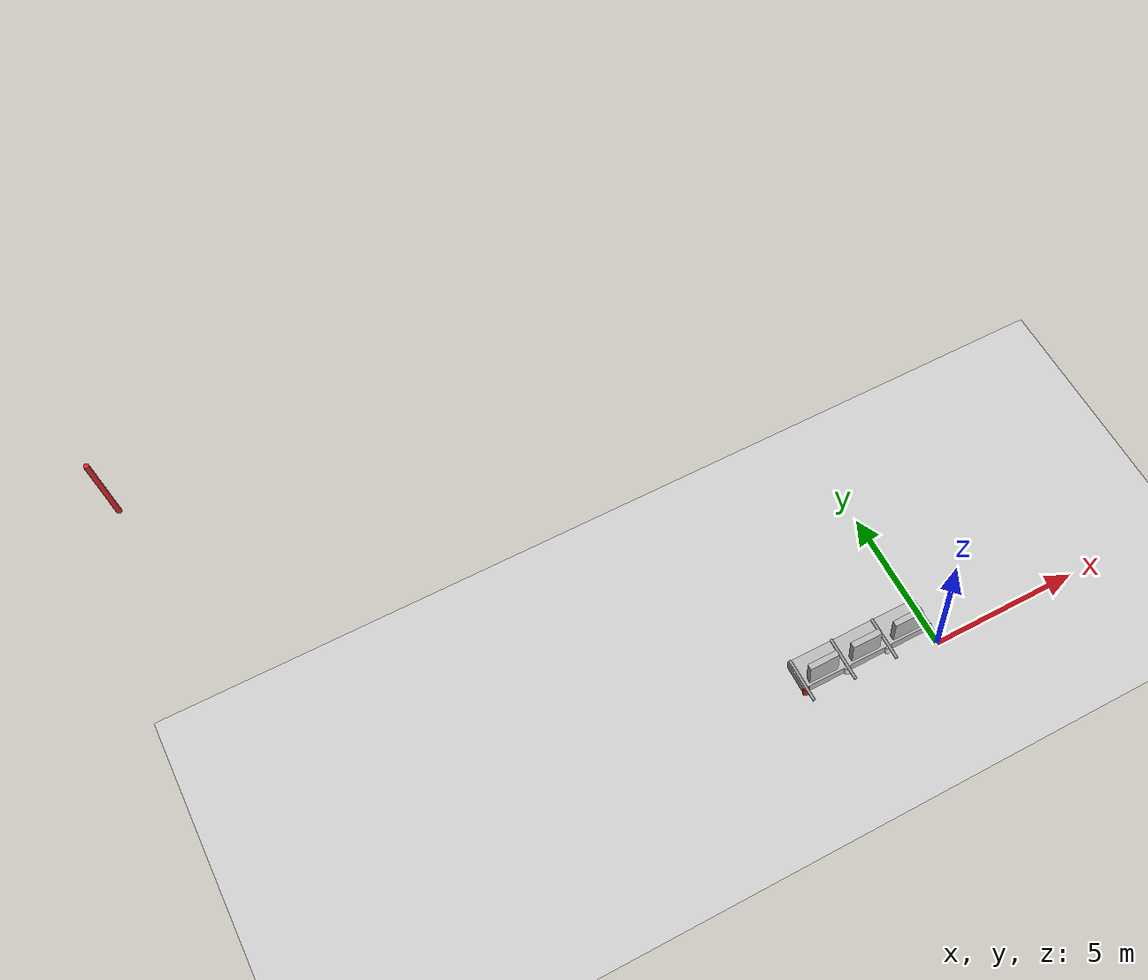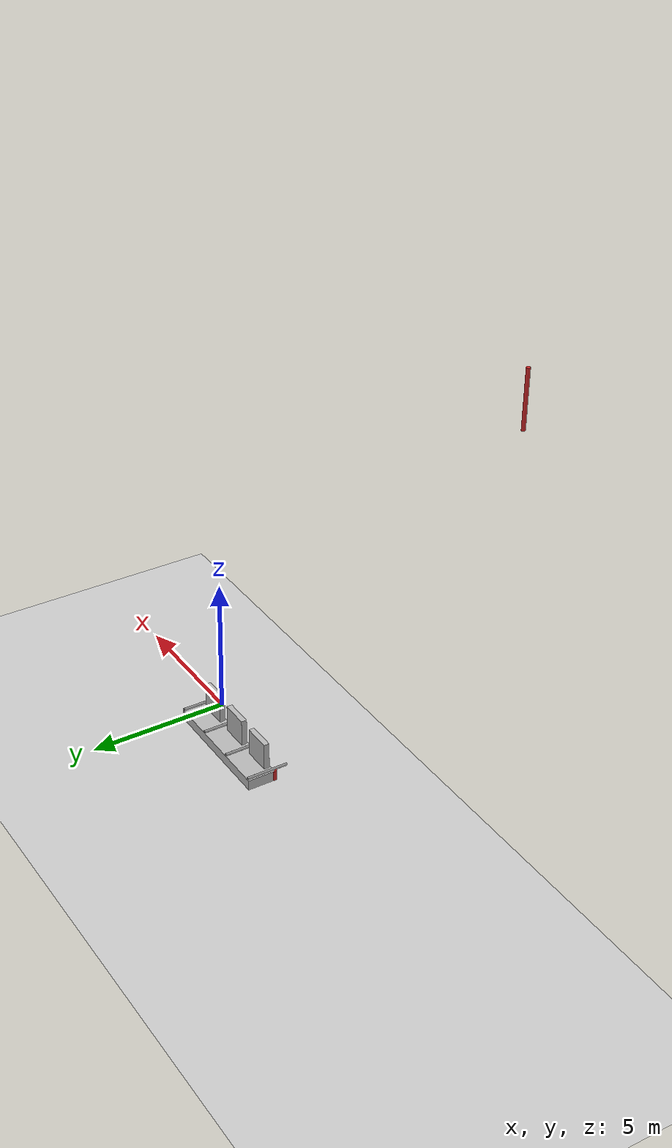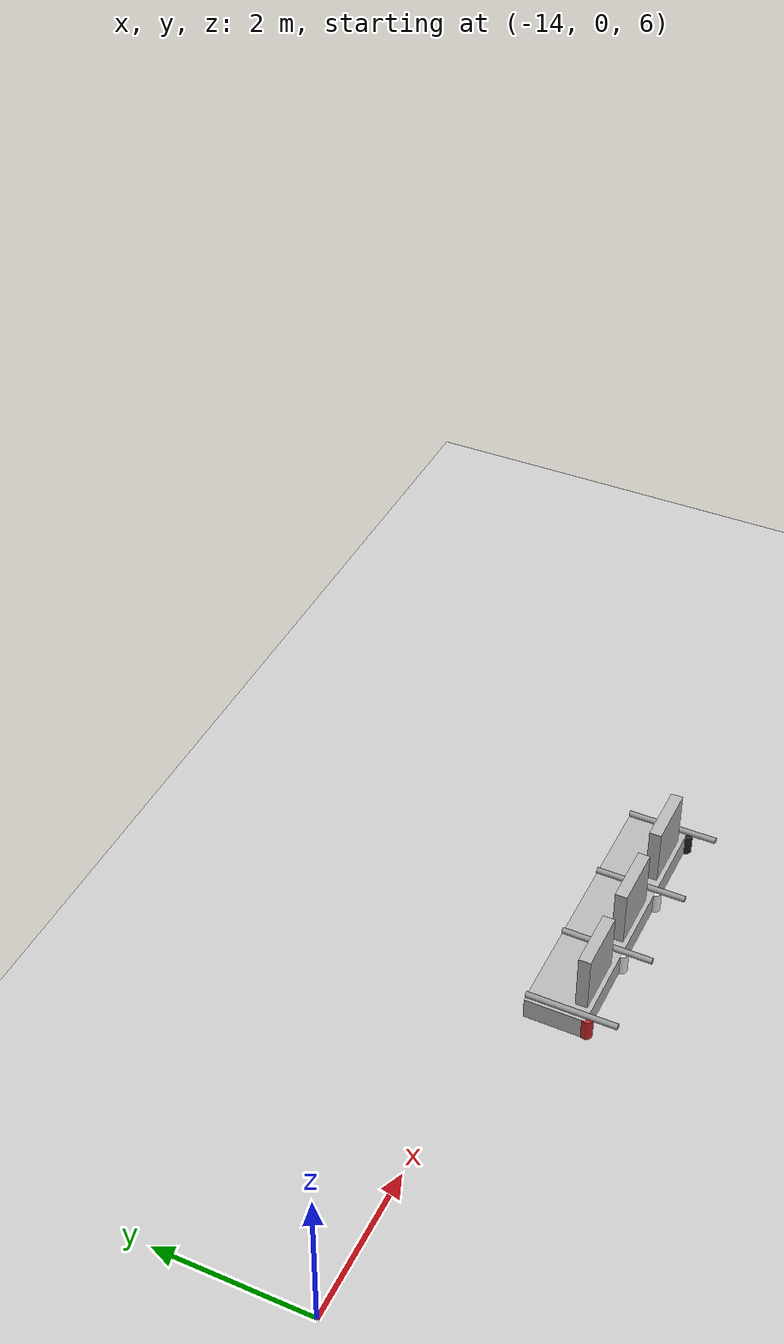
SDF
<sdf version="1.6">
 <world name="task6_world">
  <light name="sun" type="directional">
   <pose>0 0 10 0 -0 0</pose>
   <diffuse>0.8 0.8 0.8 1</diffuse>
   <specular>0.2 0.2 0.2 1</specular>
   <attenuation>
    <range>1000</range>
    <constant>0.9</constant>
    <linear>0.01</linear>
    <quadratic>0.001</quadratic>
   </attenuation>
   <direction>-0.5 0.1 -0.9</direction>
   <spot><inner_angle>0</inner_angle><outer_angle>0</outer_angle><falloff>0</falloff></spot>
  </light>
  <model name="ground_plane">
   <static>1</static>
   <link name="link">
    <collision name="collision">
     <geometry><plane><normal>0 0 1</normal><size>100 100</size></plane></geometry>
     <surface>
      <contact><collide_bitmask>65535</collide_bitmask></contact>
      <friction><ode><mu>100</mu><mu2>50</mu2></ode></friction>
     </surface>
    </collision>
    <visual name="visual">
     <cast_shadows>0</cast_shadows>
     <geometry><plane><normal>0 0 1</normal><size>100 100</size></plane></geometry>
     <material>
      <script><uri>file://media/materials/scripts/gazebo.material</uri><name>Gazebo/Grey</name></script>
     </material>
    </visual>
   </link>
  </model>
  <gravity>0 0 -9.8</gravity>
  <magnetic_field>6e-06 2.3e-05 -4.2e-05</magnetic_field>
  <atmosphere type="adiabatic"/>
  <physics type="ode">
   <max_step_size>0.001</max_step_size>
   <real_time_factor>1</real_time_factor>
   <real_time_update_rate>1000</real_time_update_rate>
  </physics>
  <scene><ambient>0.4 0.4 0.4 1</ambient><background>0.7 0.7 0.7 1</background><shadows>1</shadows></scene>
  <spherical_coordinates>
   <surface_model>EARTH_WGS84</surface_model>
   <latitude_deg>0</latitude_deg>
   <longitude_deg>0</longitude_deg>
   <elevation>0</elevation>
   <heading_deg>0</heading_deg>
  </spherical_coordinates>
  <include><uri>model://task3_model</uri></include>
 </world>
</sdf>

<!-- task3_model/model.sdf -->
<sdf version="1.6">
  <model name="Color Tutorial Model">
    <static>true</static>
    <link name="red marker">
      <collision name="body_collision">
        <geometry>
          <box>
            <size>1 1 1</size>
          </box>
        </geometry>
      </collision>
      <visual name="red marker">
        <pose>0 0 0 0 0 0</pose>
        <geometry>
          <mesh>
            <uri>model://task3_model/meshes/red_marker.stl</uri>
            <scale>0.001 0.001 0.001</scale>
          </mesh>
        </geometry>
        <material>
          <script>
            <uri>file:///media/materials/scripts/gazebo.material</uri>
            <name>Gazebo/Red</name>
          </script>
        </material>
      </visual>
    </link>

    <link name="white markers">
      <collision name="body_collision">
        <geometry>
          <box>
            <size>1 1 1</size>
          </box>
        </geometry>
      </collision>
      <visual name="white markers">
        <pose>0 0 0 0 0 0</pose>
        <geometry>
          <mesh>
            <uri>model://task3_model/meshes/white_markers.stl</uri>
            <scale>0.001 0.001 0.001</scale>
          </mesh>
        </geometry>
        <material>
          <script>
            <uri>file:///media/materials/scripts/gazebo.material</uri>
            <name>Gazebo/White</name>
          </script>
        </material>
      </visual>
    </link>

    <link name="black marker">
      <collision name="body_collision">
        <geometry>
          <box>
            <size>1 1 1</size>
          </box>
        </geometry>
      </collision>
      <visual name="black marker">
        <pose>0 0 0 0 0 0</pose>
        <geometry>
          <mesh>
            <uri>model://task3_model/meshes/black_marker.stl</uri>
            <scale>0.001 0.001 0.001</scale>
          </mesh>
        </geometry>
        <material>
          <script>
            <uri>file:///media/materials/scripts/gazebo.material</uri>
            <name>Gazebo/Black</name>
          </script>
        </material>
      </visual>
    </link>

    <link name="base">
      <collision name="body_collision">
        <geometry>
          <box>
            <size>1 1 1</size>
          </box>
        </geometry>
      </collision>
      <visual name="base">
        <pose>0 0 0 0 0 0</pose>
        <geometry>
          <mesh>
            <uri>model://task3_model/meshes/base.stl</uri>
            <scale>0.001 0.001 0.001</scale>
          </mesh>
        </geometry>
        <material>
          <script>
              <uri>model://task3_model/materials/scripts</uri>
              <uri>model://task3_model/materials/textures</uri>
              <name>DockBase/Image</name>
          </script>
        </material>
      </visual>
    </link>

    <link name="sticks">
      <collision name="body_collision">
        <geometry>
          <box>
            <size>1 1 1</size>
          </box>
        </geometry>
      </collision>
      <visual name="sticks">
        <pose>0 0 0 0 0 0</pose>
        <geometry>
          <mesh>
            <uri>model://task3_model/meshes/sticks.stl</uri>
            <scale>0.001 0.001 0.001</scale>
          </mesh>
        </geometry>
        <material>
          <script>
            <uri>file:///media/materials/scripts/gazebo.material</uri>
            <name>Gazebo/Grey</name>
          </script>
        </material>
      </visual>
    </link>

  <model name="dices">
    <pose>-3.8 0.7 0.9 0 0 0</pose>
    <static>true</static>
    <link name="first dice">
      <pose>0 0 0 0 0 0</pose>
      <collision name="body_collision">
        <geometry>
          <box>
            <size>1 0.2 1</size>
          </box>
        </geometry>
      </collision>
      <visual name="first dice">
        <pose>0 0 0 0 0 0</pose>
        <geometry>
          <box>
            <size>1 0.2 1</size>
          </box>
        </geometry>
        <material>
          <script>
            <uri>model://task3_model/materials/scripts</uri>
            <uri>model://task3_model/materials/textures</uri>
            <name>BlueDice/Image</name>
          </script>
        </material>
      </visual>
    </link>

    <link name="second dice">
      <pose>1.5 0 0 0 0 0</pose>
      <collision name="body_collision">
        <geometry>
          <box>
            <size>1 0.2 1</size>
          </box>
        </geometry>
      </collision>
      <visual name="second dice">
        <pose>0 0 0 0 0 0</pose>
        <geometry>
          <box>
            <size>1 0.2 1</size>
          </box>
        </geometry>
        <material>
          <script>
            <uri>model://task3_model/materials/scripts</uri>
            <uri>model://task3_model/materials/textures</uri>
            <name>GreenDice/Image</name>
          </script>
        </material>
      </visual>
    </link>

    <link name="third dice">
      <pose>3 0 0 0 0 0</pose>
      <collision name="body_collision">
        <geometry>
          <box>
            <size>1 0.2 1</size>
          </box>
        </geometry>
      </collision>
      <visual name="third dice">
        <pose>0 0 0 0 0 0</pose>
        <geometry>
          <box>
            <size>1 0.2 1</size>
          </box>
        </geometry>
        <material>
          <script>
            <uri>model://task3_model/materials/scripts</uri>
            <uri>model://task3_model/materials/textures</uri>
            <name>RedDice/Image</name>
          </script>
        </material>
      </visual>
    </link>
  </model>
  </model>
</sdf>
